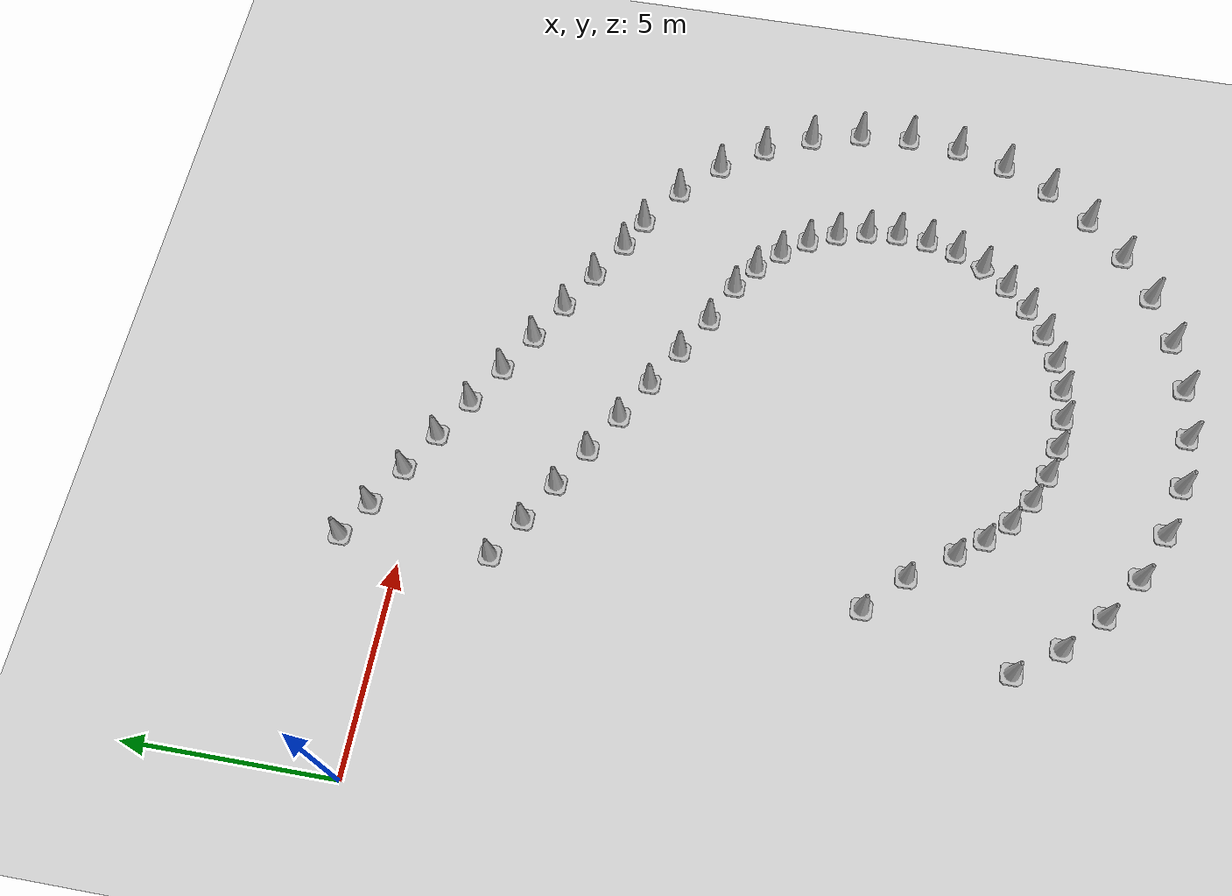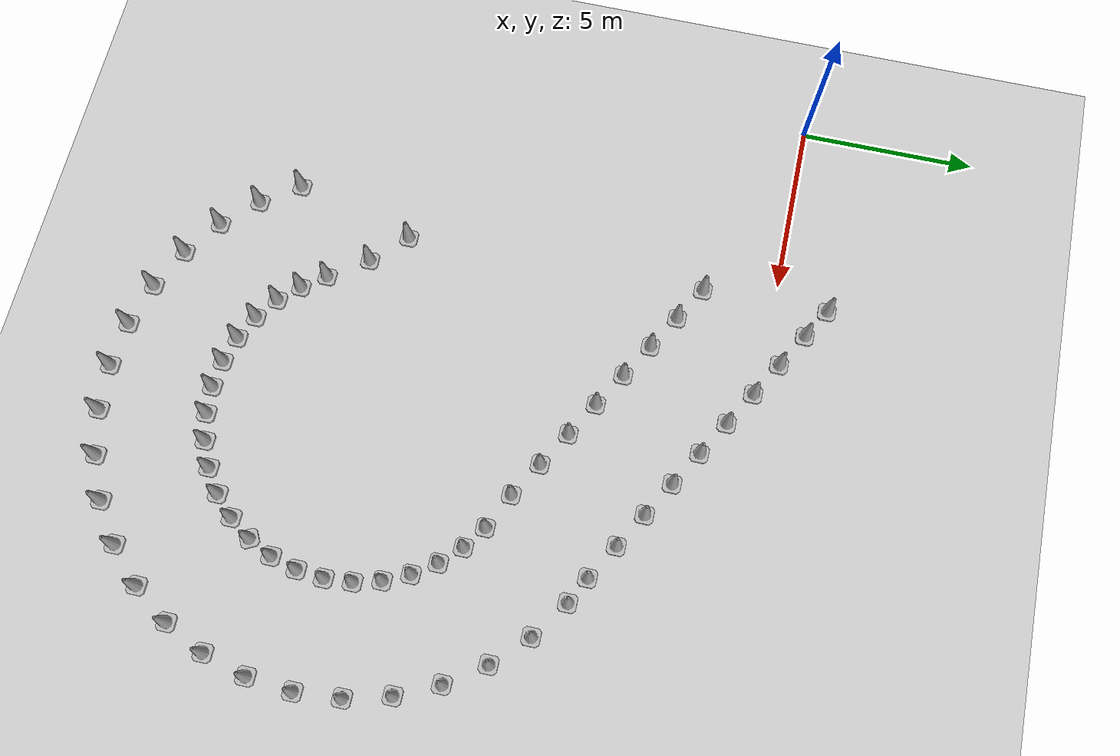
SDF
<sdf version="1.7">
 <world name="default">
  <model name="ground_plane">
   <static>1</static>
   <link name="link">
    <collision name="collision">
     <geometry><plane><normal>0 0 1</normal><size>100 100</size></plane></geometry>
     <surface><friction><ode><mu>100</mu><mu2>50</mu2></ode></friction></surface>
    </collision>
    <visual name="visual">
     <cast_shadows>0</cast_shadows>
     <geometry><plane><normal>0 0 1</normal><size>100 100</size></plane></geometry>
     <material>
      <script><uri>file://media/materials/scripts/gazebo.material</uri><name>Gazebo/Grey</name></script>
     </material>
    </visual>
   </link>
  </model>
  <model name="Construction Cone">
   <link name="link">
    <collision name="collision">
     <geometry>
      <mesh><scale>10 10 10</scale><uri>model://construction_cone/meshes/construction_cone.dae</uri></mesh>
     </geometry>
    </collision>
    <visual name="visual">
     <geometry>
      <mesh><scale>10 10 10</scale><uri>model://construction_cone/meshes/construction_cone.dae</uri></mesh>
     </geometry>
    </visual>
    <inertial>
     <inertia><ixx>1</ixx><ixy>0</ixy><ixz>0</ixz><iyy>1</iyy><iyz>0</iyz><izz>1</izz></inertia>
     <mass>1</mass>
    </inertial>
   </link>
   <pose>15.61 -12.04 -0 -0 -0 -0</pose>
  </model>
  <model name="Construction Cone_clone">
   <link name="link">
    <collision name="collision">
     <geometry>
      <mesh><scale>10 10 10</scale><uri>model://construction_cone/meshes/construction_cone.dae</uri></mesh>
     </geometry>
    </collision>
    <visual name="visual">
     <geometry>
      <mesh><scale>10 10 10</scale><uri>model://construction_cone/meshes/construction_cone.dae</uri></mesh>
     </geometry>
    </visual>
    <inertial>
     <inertia><ixx>1</ixx><ixy>0</ixy><ixz>0</ixz><iyy>1</iyy><iyz>0</iyz><izz>1</izz></inertia>
     <mass>1</mass>
    </inertial>
   </link>
   <pose>8.6 -3.81 -0 -0 -0 -0</pose>
  </model>
  <model name="Construction Cone_clone_0">
   <link name="link">
    <collision name="collision">
     <geometry>
      <mesh><scale>10 10 10</scale><uri>model://construction_cone/meshes/construction_cone.dae</uri></mesh>
     </geometry>
    </collision>
    <visual name="visual">
     <geometry>
      <mesh><scale>10 10 10</scale><uri>model://construction_cone/meshes/construction_cone.dae</uri></mesh>
     </geometry>
    </visual>
    <inertial>
     <inertia><ixx>1</ixx><ixy>0</ixy><ixz>0</ixz><iyy>1</iyy><iyz>0</iyz><izz>1</izz></inertia>
     <mass>1</mass>
    </inertial>
   </link>
   <pose>15.88 -10.5 -0 -0 -0 -0</pose>
  </model>
  <model name="Construction Cone_clone_1">
   <link name="link">
    <collision name="collision">
     <geometry>
      <mesh><scale>10 10 10</scale><uri>model://construction_cone/meshes/construction_cone.dae</uri></mesh>
     </geometry>
    </collision>
    <visual name="visual">
     <geometry>
      <mesh><scale>10 10 10</scale><uri>model://construction_cone/meshes/construction_cone.dae</uri></mesh>
     </geometry>
    </visual>
    <inertial>
     <inertia><ixx>1</ixx><ixy>0</ixy><ixz>0</ixz><iyy>1</iyy><iyz>0</iyz><izz>1</izz></inertia>
     <mass>1</mass>
    </inertial>
   </link>
   <pose>7.6 -3.23 -0 -0 -0 -0</pose>
  </model>
  <model name="Construction Cone_clone_2">
   <link name="link">
    <collision name="collision">
     <geometry>
      <mesh><scale>10 10 10</scale><uri>model://construction_cone/meshes/construction_cone.dae</uri></mesh>
     </geometry>
    </collision>
    <visual name="visual">
     <geometry>
      <mesh><scale>10 10 10</scale><uri>model://construction_cone/meshes/construction_cone.dae</uri></mesh>
     </geometry>
    </visual>
    <inertial>
     <inertia><ixx>1</ixx><ixy>0</ixy><ixz>0</ixz><iyy>1</iyy><iyz>0</iyz><izz>1</izz></inertia>
     <mass>1</mass>
    </inertial>
   </link>
   <pose>15.81 -11.28 -0 -0 -0 -0</pose>
  </model>
  <model name="Construction Cone_clone_3">
   <link name="link">
    <collision name="collision">
     <geometry>
      <mesh><scale>10 10 10</scale><uri>model://construction_cone/meshes/construction_cone.dae</uri></mesh>
     </geometry>
    </collision>
    <visual name="visual">
     <geometry>
      <mesh><scale>10 10 10</scale><uri>model://construction_cone/meshes/construction_cone.dae</uri></mesh>
     </geometry>
    </visual>
    <inertial>
     <inertia><ixx>1</ixx><ixy>0</ixy><ixz>0</ixz><iyy>1</iyy><iyz>0</iyz><izz>1</izz></inertia>
     <mass>1</mass>
    </inertial>
   </link>
   <pose>6.6 -2.65 -0 -0 -0 -0</pose>
  </model>
  <model name="Construction Cone_clone_4">
   <link name="link">
    <collision name="collision">
     <geometry>
      <mesh><scale>10 10 10</scale><uri>model://construction_cone/meshes/construction_cone.dae</uri></mesh>
     </geometry>
    </collision>
    <visual name="visual">
     <geometry>
      <mesh><scale>10 10 10</scale><uri>model://construction_cone/meshes/construction_cone.dae</uri></mesh>
     </geometry>
    </visual>
    <inertial>
     <inertia><ixx>1</ixx><ixy>0</ixy><ixz>0</ixz><iyy>1</iyy><iyz>0</iyz><izz>1</izz></inertia>
     <mass>1</mass>
    </inertial>
   </link>
   <pose>15.81 -9.72 -0 -0 -0 -0</pose>
  </model>
  <model name="Construction Cone_clone_5">
   <link name="link">
    <collision name="collision">
     <geometry>
      <mesh><scale>10 10 10</scale><uri>model://construction_cone/meshes/construction_cone.dae</uri></mesh>
     </geometry>
    </collision>
    <visual name="visual">
     <geometry>
      <mesh><scale>10 10 10</scale><uri>model://construction_cone/meshes/construction_cone.dae</uri></mesh>
     </geometry>
    </visual>
    <inertial>
     <inertia><ixx>1</ixx><ixy>0</ixy><ixz>0</ixz><iyy>1</iyy><iyz>0</iyz><izz>1</izz></inertia>
     <mass>1</mass>
    </inertial>
   </link>
   <pose>5.6 -2.08 -0 0 -1e-06 0</pose>
  </model>
  <model name="Construction Cone_clone_6">
   <link name="link">
    <collision name="collision">
     <geometry>
      <mesh><scale>10 10 10</scale><uri>model://construction_cone/meshes/construction_cone.dae</uri></mesh>
     </geometry>
    </collision>
    <visual name="visual">
     <geometry>
      <mesh><scale>10 10 10</scale><uri>model://construction_cone/meshes/construction_cone.dae</uri></mesh>
     </geometry>
    </visual>
    <inertial>
     <inertia><ixx>1</ixx><ixy>0</ixy><ixz>0</ixz><iyy>1</iyy><iyz>0</iyz><izz>1</izz></inertia>
     <mass>1</mass>
    </inertial>
   </link>
   <pose>15.28 -8.25 -0 0 -1e-06 0</pose>
  </model>
  <model name="Construction Cone_clone_8">
   <link name="link">
    <collision name="collision">
     <geometry>
      <mesh><scale>10 10 10</scale><uri>model://construction_cone/meshes/construction_cone.dae</uri></mesh>
     </geometry>
    </collision>
    <visual name="visual">
     <geometry>
      <mesh><scale>10 10 10</scale><uri>model://construction_cone/meshes/construction_cone.dae</uri></mesh>
     </geometry>
    </visual>
    <inertial>
     <inertia><ixx>1</ixx><ixy>0</ixy><ixz>0</ixz><iyy>1</iyy><iyz>0</iyz><izz>1</izz></inertia>
     <mass>1</mass>
    </inertial>
   </link>
   <pose>14.83 -7.61 -0 -0 -0 -0</pose>
  </model>
  <model name="Construction Cone_clone_9">
   <link name="link">
    <collision name="collision">
     <geometry>
      <mesh><scale>10 10 10</scale><uri>model://construction_cone/meshes/construction_cone.dae</uri></mesh>
     </geometry>
    </collision>
    <visual name="visual">
     <geometry>
      <mesh><scale>10 10 10</scale><uri>model://construction_cone/meshes/construction_cone.dae</uri></mesh>
     </geometry>
    </visual>
    <inertial>
     <inertia><ixx>1</ixx><ixy>0</ixy><ixz>0</ixz><iyy>1</iyy><iyz>0</iyz><izz>1</izz></inertia>
     <mass>1</mass>
    </inertial>
   </link>
   <pose>13.63 -6.6 -0 -0 -0 -0</pose>
  </model>
  <model name="Construction Cone_clone_10">
   <link name="link">
    <collision name="collision">
     <geometry>
      <mesh><scale>10 10 10</scale><uri>model://construction_cone/meshes/construction_cone.dae</uri></mesh>
     </geometry>
    </collision>
    <visual name="visual">
     <geometry>
      <mesh><scale>10 10 10</scale><uri>model://construction_cone/meshes/construction_cone.dae</uri></mesh>
     </geometry>
    </visual>
    <inertial>
     <inertia><ixx>1</ixx><ixy>0</ixy><ixz>0</ixz><iyy>1</iyy><iyz>0</iyz><izz>1</izz></inertia>
     <mass>1</mass>
    </inertial>
   </link>
   <pose>14.28 -7.05 -0 -0 -0 -0</pose>
  </model>
  <model name="Construction Cone_clone_11">
   <link name="link">
    <collision name="collision">
     <geometry>
      <mesh><scale>10 10 10</scale><uri>model://construction_cone/meshes/construction_cone.dae</uri></mesh>
     </geometry>
    </collision>
    <visual name="visual">
     <geometry>
      <mesh><scale>10 10 10</scale><uri>model://construction_cone/meshes/construction_cone.dae</uri></mesh>
     </geometry>
    </visual>
    <inertial>
     <inertia><ixx>1</ixx><ixy>0</ixy><ixz>0</ixz><iyy>1</iyy><iyz>0</iyz><izz>1</izz></inertia>
     <mass>1</mass>
    </inertial>
   </link>
   <pose>15.61 -8.96 -0 -0 -0 -0</pose>
  </model>
  <model name="Construction Cone_clone_12">
   <link name="link">
    <collision name="collision">
     <geometry>
      <mesh><scale>10 10 10</scale><uri>model://construction_cone/meshes/construction_cone.dae</uri></mesh>
     </geometry>
    </collision>
    <visual name="visual">
     <geometry>
      <mesh><scale>10 10 10</scale><uri>model://construction_cone/meshes/construction_cone.dae</uri></mesh>
     </geometry>
    </visual>
    <inertial>
     <inertia><ixx>1</ixx><ixy>0</ixy><ixz>0</ixz><iyy>1</iyy><iyz>0</iyz><izz>1</izz></inertia>
     <mass>1</mass>
    </inertial>
   </link>
   <pose>15.2793 -12.7506 -0 0 -0 0.480187</pose>
  </model>
  <model name="Construction Cone_clone_13">
   <link name="link">
    <collision name="collision">
     <geometry>
      <mesh><scale>10 10 10</scale><uri>model://construction_cone/meshes/construction_cone.dae</uri></mesh>
     </geometry>
    </collision>
    <visual name="visual">
     <geometry>
      <mesh><scale>10 10 10</scale><uri>model://construction_cone/meshes/construction_cone.dae</uri></mesh>
     </geometry>
    </visual>
    <inertial>
     <inertia><ixx>1</ixx><ixy>0</ixy><ixz>0</ixz><iyy>1</iyy><iyz>0</iyz><izz>1</izz></inertia>
     <mass>1</mass>
    </inertial>
   </link>
   <pose>9.6 -4.39 -0 -0 -0 -0</pose>
  </model>
  <model name="Construction Cone_clone_14">
   <link name="link">
    <collision name="collision">
     <geometry>
      <mesh><scale>10 10 10</scale><uri>model://construction_cone/meshes/construction_cone.dae</uri></mesh>
     </geometry>
    </collision>
    <visual name="visual">
     <geometry>
      <mesh><scale>10 10 10</scale><uri>model://construction_cone/meshes/construction_cone.dae</uri></mesh>
     </geometry>
    </visual>
    <inertial>
     <inertia><ixx>1</ixx><ixy>0</ixy><ixz>0</ixz><iyy>1</iyy><iyz>0</iyz><izz>1</izz></inertia>
     <mass>1</mass>
    </inertial>
   </link>
   <pose>14.83 -13.39 -0 -0 -0 -0</pose>
  </model>
  <model name="Construction Cone_clone_15">
   <link name="link">
    <collision name="collision">
     <geometry>
      <mesh><scale>10 10 10</scale><uri>model://construction_cone/meshes/construction_cone.dae</uri></mesh>
     </geometry>
    </collision>
    <visual name="visual">
     <geometry>
      <mesh><scale>10 10 10</scale><uri>model://construction_cone/meshes/construction_cone.dae</uri></mesh>
     </geometry>
    </visual>
    <inertial>
     <inertia><ixx>1</ixx><ixy>0</ixy><ixz>0</ixz><iyy>1</iyy><iyz>0</iyz><izz>1</izz></inertia>
     <mass>1</mass>
    </inertial>
   </link>
   <pose>10.6 -4.96 -0 -0 -0 -0</pose>
  </model>
  <model name="Construction Cone_clone_16">
   <link name="link">
    <collision name="collision">
     <geometry>
      <mesh><scale>10 10 10</scale><uri>model://construction_cone/meshes/construction_cone.dae</uri></mesh>
     </geometry>
    </collision>
    <visual name="visual">
     <geometry>
      <mesh><scale>10 10 10</scale><uri>model://construction_cone/meshes/construction_cone.dae</uri></mesh>
     </geometry>
    </visual>
    <inertial>
     <inertia><ixx>1</ixx><ixy>0</ixy><ixz>0</ixz><iyy>1</iyy><iyz>0</iyz><izz>1</izz></inertia>
     <mass>1</mass>
    </inertial>
   </link>
   <pose>14.28 -13.95 -0 0 -1e-06 0</pose>
  </model>
  <model name="Construction Cone_clone_17">
   <link name="link">
    <collision name="collision">
     <geometry>
      <mesh><scale>10 10 10</scale><uri>model://construction_cone/meshes/construction_cone.dae</uri></mesh>
     </geometry>
    </collision>
    <visual name="visual">
     <geometry>
      <mesh><scale>10 10 10</scale><uri>model://construction_cone/meshes/construction_cone.dae</uri></mesh>
     </geometry>
    </visual>
    <inertial>
     <inertia><ixx>1</ixx><ixy>0</ixy><ixz>0</ixz><iyy>1</iyy><iyz>0</iyz><izz>1</izz></inertia>
     <mass>1</mass>
    </inertial>
   </link>
   <pose>11.6 -5.54 -0 -0 -0 -0</pose>
  </model>
  <model name="Construction Cone_clone_18">
   <link name="link">
    <collision name="collision">
     <geometry>
      <mesh><scale>10 10 10</scale><uri>model://construction_cone/meshes/construction_cone.dae</uri></mesh>
     </geometry>
    </collision>
    <visual name="visual">
     <geometry>
      <mesh><scale>10 10 10</scale><uri>model://construction_cone/meshes/construction_cone.dae</uri></mesh>
     </geometry>
    </visual>
    <inertial>
     <inertia><ixx>1</ixx><ixy>0</ixy><ixz>0</ixz><iyy>1</iyy><iyz>0</iyz><izz>1</izz></inertia>
     <mass>1</mass>
    </inertial>
   </link>
   <pose>13.63 -14.4 -1e-05 0 -0 0</pose>
  </model>
  <model name="Construction Cone_clone_19">
   <link name="link">
    <collision name="collision">
     <geometry>
      <mesh><scale>10 10 10</scale><uri>model://construction_cone/meshes/construction_cone.dae</uri></mesh>
     </geometry>
    </collision>
    <visual name="visual">
     <geometry>
      <mesh><scale>10 10 10</scale><uri>model://construction_cone/meshes/construction_cone.dae</uri></mesh>
     </geometry>
    </visual>
    <inertial>
     <inertia><ixx>1</ixx><ixy>0</ixy><ixz>0</ixz><iyy>1</iyy><iyz>0</iyz><izz>1</izz></inertia>
     <mass>1</mass>
    </inertial>
   </link>
   <pose>12.6 -6.12 -0 0 -1e-06 0</pose>
  </model>
  <model name="Construction Cone_clone_20">
   <link name="link">
    <collision name="collision">
     <geometry>
      <mesh><scale>10 10 10</scale><uri>model://construction_cone/meshes/construction_cone.dae</uri></mesh>
     </geometry>
    </collision>
    <visual name="visual">
     <geometry>
      <mesh><scale>10 10 10</scale><uri>model://construction_cone/meshes/construction_cone.dae</uri></mesh>
     </geometry>
    </visual>
    <inertial>
     <inertia><ixx>1</ixx><ixy>0</ixy><ixz>0</ixz><iyy>1</iyy><iyz>0</iyz><izz>1</izz></inertia>
     <mass>1</mass>
    </inertial>
   </link>
   <pose>12.92 -14.73 -0 -0 -0 -0</pose>
  </model>
  <model name="Construction Cone_clone_21">
   <link name="link">
    <collision name="collision">
     <geometry>
      <mesh><scale>10 10 10</scale><uri>model://construction_cone/meshes/construction_cone.dae</uri></mesh>
     </geometry>
    </collision>
    <visual name="visual">
     <geometry>
      <mesh><scale>10 10 10</scale><uri>model://construction_cone/meshes/construction_cone.dae</uri></mesh>
     </geometry>
    </visual>
    <inertial>
     <inertia><ixx>1</ixx><ixy>0</ixy><ixz>0</ixz><iyy>1</iyy><iyz>0</iyz><izz>1</izz></inertia>
     <mass>1</mass>
    </inertial>
   </link>
   <pose>6.74 -11.68 -0 0 -0 0.044512</pose>
  </model>
  <model name="Construction Cone_clone_22">
   <link name="link">
    <collision name="collision">
     <geometry>
      <mesh><scale>10 10 10</scale><uri>model://construction_cone/meshes/construction_cone.dae</uri></mesh>
     </geometry>
    </collision>
    <visual name="visual">
     <geometry>
      <mesh><scale>10 10 10</scale><uri>model://construction_cone/meshes/construction_cone.dae</uri></mesh>
     </geometry>
    </visual>
    <inertial>
     <inertia><ixx>1</ixx><ixy>0</ixy><ixz>0</ixz><iyy>1</iyy><iyz>0</iyz><izz>1</izz></inertia>
     <mass>1</mass>
    </inertial>
   </link>
   <pose>12.16 -14.93 -0 -0 -0 -0</pose>
  </model>
  <model name="Construction Cone_clone_23">
   <link name="link">
    <collision name="collision">
     <geometry>
      <mesh><scale>10 10 10</scale><uri>model://construction_cone/meshes/construction_cone.dae</uri></mesh>
     </geometry>
    </collision>
    <visual name="visual">
     <geometry>
      <mesh><scale>10 10 10</scale><uri>model://construction_cone/meshes/construction_cone.dae</uri></mesh>
     </geometry>
    </visual>
    <inertial>
     <inertia><ixx>1</ixx><ixy>0</ixy><ixz>0</ixz><iyy>1</iyy><iyz>0</iyz><izz>1</izz></inertia>
     <mass>1</mass>
    </inertial>
   </link>
   <pose>5.81 -10.75 -0 0 -1e-06 0</pose>
  </model>
  <model name="Construction Cone_clone_24">
   <link name="link">
    <collision name="collision">
     <geometry>
      <mesh><scale>10 10 10</scale><uri>model://construction_cone/meshes/construction_cone.dae</uri></mesh>
     </geometry>
    </collision>
    <visual name="visual">
     <geometry>
      <mesh><scale>10 10 10</scale><uri>model://construction_cone/meshes/construction_cone.dae</uri></mesh>
     </geometry>
    </visual>
    <inertial>
     <inertia><ixx>1</ixx><ixy>0</ixy><ixz>0</ixz><iyy>1</iyy><iyz>0</iyz><izz>1</izz></inertia>
     <mass>1</mass>
    </inertial>
   </link>
   <pose>11.38 -15 -1e-05 0 -0 0</pose>
  </model>
  <model name="Construction Cone_clone_26">
   <link name="link">
    <collision name="collision">
     <geometry>
      <mesh><scale>10 10 10</scale><uri>model://construction_cone/meshes/construction_cone.dae</uri></mesh>
     </geometry>
    </collision>
    <visual name="visual">
     <geometry>
      <mesh><scale>10 10 10</scale><uri>model://construction_cone/meshes/construction_cone.dae</uri></mesh>
     </geometry>
    </visual>
    <inertial>
     <inertia><ixx>1</ixx><ixy>0</ixy><ixz>0</ixz><iyy>1</iyy><iyz>0</iyz><izz>1</izz></inertia>
     <mass>1</mass>
    </inertial>
   </link>
   <pose>10.6 -14.93 -0 -0 -0 -0</pose>
  </model>
  <model name="Construction Cone_clone_28">
   <link name="link">
    <collision name="collision">
     <geometry>
      <mesh><scale>10 10 10</scale><uri>model://construction_cone/meshes/construction_cone.dae</uri></mesh>
     </geometry>
    </collision>
    <visual name="visual">
     <geometry>
      <mesh><scale>10 10 10</scale><uri>model://construction_cone/meshes/construction_cone.dae</uri></mesh>
     </geometry>
    </visual>
    <inertial>
     <inertia><ixx>1</ixx><ixy>0</ixy><ixz>0</ixz><iyy>1</iyy><iyz>0</iyz><izz>1</izz></inertia>
     <mass>1</mass>
    </inertial>
   </link>
   <pose>9.84 -14.73 -0 0 -1e-06 0</pose>
  </model>
  <model name="Construction Cone_clone_30">
   <link name="link">
    <collision name="collision">
     <geometry>
      <mesh><scale>10 10 10</scale><uri>model://construction_cone/meshes/construction_cone.dae</uri></mesh>
     </geometry>
    </collision>
    <visual name="visual">
     <geometry>
      <mesh><scale>10 10 10</scale><uri>model://construction_cone/meshes/construction_cone.dae</uri></mesh>
     </geometry>
    </visual>
    <inertial>
     <inertia><ixx>1</ixx><ixy>0</ixy><ixz>0</ixz><iyy>1</iyy><iyz>0</iyz><izz>1</izz></inertia>
     <mass>1</mass>
    </inertial>
   </link>
   <pose>8.49 -13.95 -0 -0 -0 -0</pose>
  </model>
  <model name="Construction Cone_clone_31">
   <link name="link">
    <collision name="collision">
     <geometry>
      <mesh><scale>10 10 10</scale><uri>model://construction_cone/meshes/construction_cone.dae</uri></mesh>
     </geometry>
    </collision>
    <visual name="visual">
     <geometry>
      <mesh><scale>10 10 10</scale><uri>model://construction_cone/meshes/construction_cone.dae</uri></mesh>
     </geometry>
    </visual>
    <inertial>
     <inertia><ixx>1</ixx><ixy>0</ixy><ixz>0</ixz><iyy>1</iyy><iyz>0</iyz><izz>1</izz></inertia>
     <mass>1</mass>
    </inertial>
   </link>
   <pose>9.13 -14.4 -0 -0 -0 -0</pose>
  </model>
  <model name="Construction Cone_clone_34">
   <link name="link">
    <collision name="collision">
     <geometry>
      <mesh><scale>10 10 10</scale><uri>model://construction_cone/meshes/construction_cone.dae</uri></mesh>
     </geometry>
    </collision>
    <visual name="visual">
     <geometry>
      <mesh><scale>10 10 10</scale><uri>model://construction_cone/meshes/construction_cone.dae</uri></mesh>
     </geometry>
    </visual>
    <inertial>
     <inertia><ixx>1</ixx><ixy>0</ixy><ixz>0</ixz><iyy>1</iyy><iyz>0</iyz><izz>1</izz></inertia>
     <mass>1</mass>
    </inertial>
   </link>
   <pose>7.96913 -13.3975 -0 0 -1e-06 -0.004085</pose>
  </model>
  <model name="Construction Cone_clone_36">
   <link name="link">
    <collision name="collision">
     <geometry>
      <mesh><scale>10 10 10</scale><uri>model://construction_cone/meshes/construction_cone.dae</uri></mesh>
     </geometry>
    </collision>
    <visual name="visual">
     <geometry>
      <mesh><scale>10 10 10</scale><uri>model://construction_cone/meshes/construction_cone.dae</uri></mesh>
     </geometry>
    </visual>
    <inertial>
     <inertia><ixx>1</ixx><ixy>0</ixy><ixz>0</ixz><iyy>1</iyy><iyz>0</iyz><izz>1</izz></inertia>
     <mass>1</mass>
    </inertial>
   </link>
   <pose>7.49 -12.75 -0 0 -1e-06 0</pose>
  </model>
  <model name="Construction Cone_clone_94">
   <link name="link">
    <collision name="collision">
     <geometry>
      <mesh><scale>10 10 10</scale><uri>model://construction_cone/meshes/construction_cone.dae</uri></mesh>
     </geometry>
    </collision>
    <visual name="visual">
     <geometry>
      <mesh><scale>10 10 10</scale><uri>model://construction_cone/meshes/construction_cone.dae</uri></mesh>
     </geometry>
    </visual>
    <inertial>
     <inertia><ixx>1</ixx><ixy>0</ixy><ixz>0</ixz><iyy>1</iyy><iyz>0</iyz><izz>1</izz></inertia>
     <mass>1</mass>
    </inertial>
   </link>
   <pose>15.13 -17 -0 -0 -0 -0</pose>
  </model>
  <model name="Construction Cone_clone_95">
   <link name="link">
    <collision name="collision">
     <geometry>
      <mesh><scale>10 10 10</scale><uri>model://construction_cone/meshes/construction_cone.dae</uri></mesh>
     </geometry>
    </collision>
    <visual name="visual">
     <geometry>
      <mesh><scale>10 10 10</scale><uri>model://construction_cone/meshes/construction_cone.dae</uri></mesh>
     </geometry>
    </visual>
    <inertial>
     <inertia><ixx>1</ixx><ixy>0</ixy><ixz>0</ixz><iyy>1</iyy><iyz>0</iyz><izz>1</izz></inertia>
     <mass>1</mass>
    </inertial>
   </link>
   <pose>13.95 -17.55 -9e-06 1e-06 -0 0</pose>
  </model>
  <model name="Construction Cone_clone_96">
   <link name="link">
    <collision name="collision">
     <geometry>
      <mesh><scale>10 10 10</scale><uri>model://construction_cone/meshes/construction_cone.dae</uri></mesh>
     </geometry>
    </collision>
    <visual name="visual">
     <geometry>
      <mesh><scale>10 10 10</scale><uri>model://construction_cone/meshes/construction_cone.dae</uri></mesh>
     </geometry>
    </visual>
    <inertial>
     <inertia><ixx>1</ixx><ixy>0</ixy><ixz>0</ixz><iyy>1</iyy><iyz>0</iyz><izz>1</izz></inertia>
     <mass>1</mass>
    </inertial>
   </link>
   <pose>12.69 -17.89 -0 0 -0 9.9e-05</pose>
  </model>
  <model name="Construction Cone_clone_97">
   <link name="link">
    <collision name="collision">
     <geometry>
      <mesh><scale>10 10 10</scale><uri>model://construction_cone/meshes/construction_cone.dae</uri></mesh>
     </geometry>
    </collision>
    <visual name="visual">
     <geometry>
      <mesh><scale>10 10 10</scale><uri>model://construction_cone/meshes/construction_cone.dae</uri></mesh>
     </geometry>
    </visual>
    <inertial>
     <inertia><ixx>1</ixx><ixy>0</ixy><ixz>0</ixz><iyy>1</iyy><iyz>0</iyz><izz>1</izz></inertia>
     <mass>1</mass>
    </inertial>
   </link>
   <pose>11.38 -18 -0 0 -0 1.3e-05</pose>
  </model>
  <model name="Construction Cone_clone_98">
   <link name="link">
    <collision name="collision">
     <geometry>
      <mesh><scale>10 10 10</scale><uri>model://construction_cone/meshes/construction_cone.dae</uri></mesh>
     </geometry>
    </collision>
    <visual name="visual">
     <geometry>
      <mesh><scale>10 10 10</scale><uri>model://construction_cone/meshes/construction_cone.dae</uri></mesh>
     </geometry>
    </visual>
    <inertial>
     <inertia><ixx>1</ixx><ixy>0</ixy><ixz>0</ixz><iyy>1</iyy><iyz>0</iyz><izz>1</izz></inertia>
     <mass>1</mass>
    </inertial>
   </link>
   <pose>10.08 -17.89 -0 -0 -0 -0</pose>
  </model>
  <model name="Construction Cone_clone_99">
   <link name="link">
    <collision name="collision">
     <geometry>
      <mesh><scale>10 10 10</scale><uri>model://construction_cone/meshes/construction_cone.dae</uri></mesh>
     </geometry>
    </collision>
    <visual name="visual">
     <geometry>
      <mesh><scale>10 10 10</scale><uri>model://construction_cone/meshes/construction_cone.dae</uri></mesh>
     </geometry>
    </visual>
    <inertial>
     <inertia><ixx>1</ixx><ixy>0</ixy><ixz>0</ixz><iyy>1</iyy><iyz>0</iyz><izz>1</izz></inertia>
     <mass>1</mass>
    </inertial>
   </link>
   <pose>8.82 -17.55 -0 -0 -0 -0</pose>
  </model>
  <model name="Construction Cone_clone_100">
   <link name="link">
    <collision name="collision">
     <geometry>
      <mesh><scale>10 10 10</scale><uri>model://construction_cone/meshes/construction_cone.dae</uri></mesh>
     </geometry>
    </collision>
    <visual name="visual">
     <geometry>
      <mesh><scale>10 10 10</scale><uri>model://construction_cone/meshes/construction_cone.dae</uri></mesh>
     </geometry>
    </visual>
    <inertial>
     <inertia><ixx>1</ixx><ixy>0</ixy><ixz>0</ixz><iyy>1</iyy><iyz>0</iyz><izz>1</izz></inertia>
     <mass>1</mass>
    </inertial>
   </link>
   <pose>7.63 -17 -9e-06 1e-06 -0 0</pose>
  </model>
  <model name="Construction Cone_clone_101">
   <link name="link">
    <collision name="collision">
     <geometry>
      <mesh><scale>10 10 10</scale><uri>model://construction_cone/meshes/construction_cone.dae</uri></mesh>
     </geometry>
    </collision>
    <visual name="visual">
     <geometry>
      <mesh><scale>10 10 10</scale><uri>model://construction_cone/meshes/construction_cone.dae</uri></mesh>
     </geometry>
    </visual>
    <inertial>
     <inertia><ixx>1</ixx><ixy>0</ixy><ixz>0</ixz><iyy>1</iyy><iyz>0</iyz><izz>1</izz></inertia>
     <mass>1</mass>
    </inertial>
   </link>
   <pose>6.56 -16.25 -0 -0 -0 -0</pose>
  </model>
  <model name="Construction Cone_clone_102">
   <link name="link">
    <collision name="collision">
     <geometry>
      <mesh><scale>10 10 10</scale><uri>model://construction_cone/meshes/construction_cone.dae</uri></mesh>
     </geometry>
    </collision>
    <visual name="visual">
     <geometry>
      <mesh><scale>10 10 10</scale><uri>model://construction_cone/meshes/construction_cone.dae</uri></mesh>
     </geometry>
    </visual>
    <inertial>
     <inertia><ixx>1</ixx><ixy>0</ixy><ixz>0</ixz><iyy>1</iyy><iyz>0</iyz><izz>1</izz></inertia>
     <mass>1</mass>
    </inertial>
   </link>
   <pose>5.64 -15.32 -0 1e-06 -0 -0.022913</pose>
  </model>
  <model name="Construction Cone_clone_103">
   <link name="link">
    <collision name="collision">
     <geometry>
      <mesh><scale>10 10 10</scale><uri>model://construction_cone/meshes/construction_cone.dae</uri></mesh>
     </geometry>
    </collision>
    <visual name="visual">
     <geometry>
      <mesh><scale>10 10 10</scale><uri>model://construction_cone/meshes/construction_cone.dae</uri></mesh>
     </geometry>
    </visual>
    <inertial>
     <inertia><ixx>1</ixx><ixy>0</ixy><ixz>0</ixz><iyy>1</iyy><iyz>0</iyz><izz>1</izz></inertia>
     <mass>1</mass>
    </inertial>
   </link>
   <pose>16.2 -16.25 -0 -0 -0 -0</pose>
  </model>
  <model name="Construction Cone_clone_104">
   <link name="link">
    <collision name="collision">
     <geometry>
      <mesh><scale>10 10 10</scale><uri>model://construction_cone/meshes/construction_cone.dae</uri></mesh>
     </geometry>
    </collision>
    <visual name="visual">
     <geometry>
      <mesh><scale>10 10 10</scale><uri>model://construction_cone/meshes/construction_cone.dae</uri></mesh>
     </geometry>
    </visual>
    <inertial>
     <inertia><ixx>1</ixx><ixy>0</ixy><ixz>0</ixz><iyy>1</iyy><iyz>0</iyz><izz>1</izz></inertia>
     <mass>1</mass>
    </inertial>
   </link>
   <pose>17.13 -15.32 -0 -0 -0 -0</pose>
  </model>
  <model name="Construction Cone_clone_105">
   <link name="link">
    <collision name="collision">
     <geometry>
      <mesh><scale>10 10 10</scale><uri>model://construction_cone/meshes/construction_cone.dae</uri></mesh>
     </geometry>
    </collision>
    <visual name="visual">
     <geometry>
      <mesh><scale>10 10 10</scale><uri>model://construction_cone/meshes/construction_cone.dae</uri></mesh>
     </geometry>
    </visual>
    <inertial>
     <inertia><ixx>1</ixx><ixy>0</ixy><ixz>0</ixz><iyy>1</iyy><iyz>0</iyz><izz>1</izz></inertia>
     <mass>1</mass>
    </inertial>
   </link>
   <pose>17.88 -14.25 -0 -0 -0 -0</pose>
  </model>
  <model name="Construction Cone_clone_106">
   <link name="link">
    <collision name="collision">
     <geometry>
      <mesh><scale>10 10 10</scale><uri>model://construction_cone/meshes/construction_cone.dae</uri></mesh>
     </geometry>
    </collision>
    <visual name="visual">
     <geometry>
      <mesh><scale>10 10 10</scale><uri>model://construction_cone/meshes/construction_cone.dae</uri></mesh>
     </geometry>
    </visual>
    <inertial>
     <inertia><ixx>1</ixx><ixy>0</ixy><ixz>0</ixz><iyy>1</iyy><iyz>0</iyz><izz>1</izz></inertia>
     <mass>1</mass>
    </inertial>
   </link>
   <pose>18.43 -13.07 -0 -0 -0 -0</pose>
  </model>
  <model name="Construction Cone_clone_107">
   <link name="link">
    <collision name="collision">
     <geometry>
      <mesh><scale>10 10 10</scale><uri>model://construction_cone/meshes/construction_cone.dae</uri></mesh>
     </geometry>
    </collision>
    <visual name="visual">
     <geometry>
      <mesh><scale>10 10 10</scale><uri>model://construction_cone/meshes/construction_cone.dae</uri></mesh>
     </geometry>
    </visual>
    <inertial>
     <inertia><ixx>1</ixx><ixy>0</ixy><ixz>0</ixz><iyy>1</iyy><iyz>0</iyz><izz>1</izz></inertia>
     <mass>1</mass>
    </inertial>
   </link>
   <pose>18.88 -10.5 -0 -0 -0 -0</pose>
  </model>
  <model name="Construction Cone_clone_108">
   <link name="link">
    <collision name="collision">
     <geometry>
      <mesh><scale>10 10 10</scale><uri>model://construction_cone/meshes/construction_cone.dae</uri></mesh>
     </geometry>
    </collision>
    <visual name="visual">
     <geometry>
      <mesh><scale>10 10 10</scale><uri>model://construction_cone/meshes/construction_cone.dae</uri></mesh>
     </geometry>
    </visual>
    <inertial>
     <inertia><ixx>1</ixx><ixy>0</ixy><ixz>0</ixz><iyy>1</iyy><iyz>0</iyz><izz>1</izz></inertia>
     <mass>1</mass>
    </inertial>
   </link>
   <pose>18.77 -11.8 -0 -0 -0 -0</pose>
  </model>
  <model name="Construction Cone_clone_109">
   <link name="link">
    <collision name="collision">
     <geometry>
      <mesh><scale>10 10 10</scale><uri>model://construction_cone/meshes/construction_cone.dae</uri></mesh>
     </geometry>
    </collision>
    <visual name="visual">
     <geometry>
      <mesh><scale>10 10 10</scale><uri>model://construction_cone/meshes/construction_cone.dae</uri></mesh>
     </geometry>
    </visual>
    <inertial>
     <inertia><ixx>1</ixx><ixy>0</ixy><ixz>0</ixz><iyy>1</iyy><iyz>0</iyz><izz>1</izz></inertia>
     <mass>1</mass>
    </inertial>
   </link>
   <pose>15.13 -4 -0 0 -0 0.004778</pose>
  </model>
  <model name="Construction Cone_clone_110">
   <link name="link">
    <collision name="collision">
     <geometry>
      <mesh><scale>10 10 10</scale><uri>model://construction_cone/meshes/construction_cone.dae</uri></mesh>
     </geometry>
    </collision>
    <visual name="visual">
     <geometry>
      <mesh><scale>10 10 10</scale><uri>model://construction_cone/meshes/construction_cone.dae</uri></mesh>
     </geometry>
    </visual>
    <inertial>
     <inertia><ixx>1</ixx><ixy>0</ixy><ixz>0</ixz><iyy>1</iyy><iyz>0</iyz><izz>1</izz></inertia>
     <mass>1</mass>
    </inertial>
   </link>
   <pose>18.77 -9.2 -9e-06 1e-06 -0 0</pose>
  </model>
  <model name="Construction Cone_clone_111">
   <link name="link">
    <collision name="collision">
     <geometry>
      <mesh><scale>10 10 10</scale><uri>model://construction_cone/meshes/construction_cone.dae</uri></mesh>
     </geometry>
    </collision>
    <visual name="visual">
     <geometry>
      <mesh><scale>10 10 10</scale><uri>model://construction_cone/meshes/construction_cone.dae</uri></mesh>
     </geometry>
    </visual>
    <inertial>
     <inertia><ixx>1</ixx><ixy>0</ixy><ixz>0</ixz><iyy>1</iyy><iyz>0</iyz><izz>1</izz></inertia>
     <mass>1</mass>
    </inertial>
   </link>
   <pose>18.43 -7.92993 -0 0 -1e-06 0.001553</pose>
  </model>
  <model name="Construction Cone_clone_112">
   <link name="link">
    <collision name="collision">
     <geometry>
      <mesh><scale>10 10 10</scale><uri>model://construction_cone/meshes/construction_cone.dae</uri></mesh>
     </geometry>
    </collision>
    <visual name="visual">
     <geometry>
      <mesh><scale>10 10 10</scale><uri>model://construction_cone/meshes/construction_cone.dae</uri></mesh>
     </geometry>
    </visual>
    <inertial>
     <inertia><ixx>1</ixx><ixy>0</ixy><ixz>0</ixz><iyy>1</iyy><iyz>0</iyz><izz>1</izz></inertia>
     <mass>1</mass>
    </inertial>
   </link>
   <pose>17.88 -6.75 -0 -0 -0 -0</pose>
  </model>
  <model name="Construction Cone_clone_113">
   <link name="link">
    <collision name="collision">
     <geometry>
      <mesh><scale>10 10 10</scale><uri>model://construction_cone/meshes/construction_cone.dae</uri></mesh>
     </geometry>
    </collision>
    <visual name="visual">
     <geometry>
      <mesh><scale>10 10 10</scale><uri>model://construction_cone/meshes/construction_cone.dae</uri></mesh>
     </geometry>
    </visual>
    <inertial>
     <inertia><ixx>1</ixx><ixy>0</ixy><ixz>0</ixz><iyy>1</iyy><iyz>0</iyz><izz>1</izz></inertia>
     <mass>1</mass>
    </inertial>
   </link>
   <pose>17.13 -5.68 -0 -0 -0 -0</pose>
  </model>
  <model name="Construction Cone_clone_114">
   <link name="link">
    <collision name="collision">
     <geometry>
      <mesh><scale>10 10 10</scale><uri>model://construction_cone/meshes/construction_cone.dae</uri></mesh>
     </geometry>
    </collision>
    <visual name="visual">
     <geometry>
      <mesh><scale>10 10 10</scale><uri>model://construction_cone/meshes/construction_cone.dae</uri></mesh>
     </geometry>
    </visual>
    <inertial>
     <inertia><ixx>1</ixx><ixy>0</ixy><ixz>0</ixz><iyy>1</iyy><iyz>0</iyz><izz>1</izz></inertia>
     <mass>1</mass>
    </inertial>
   </link>
   <pose>16.2 -4.75 -0 0 -1e-06 -6e-06</pose>
  </model>
  <model name="Construction Cone_clone_115">
   <link name="link">
    <collision name="collision">
     <geometry>
      <mesh><scale>10 10 10</scale><uri>model://construction_cone/meshes/construction_cone.dae</uri></mesh>
     </geometry>
    </collision>
    <visual name="visual">
     <geometry>
      <mesh><scale>10 10 10</scale><uri>model://construction_cone/meshes/construction_cone.dae</uri></mesh>
     </geometry>
    </visual>
    <inertial>
     <inertia><ixx>1</ixx><ixy>0</ixy><ixz>0</ixz><iyy>1</iyy><iyz>0</iyz><izz>1</izz></inertia>
     <mass>1</mass>
    </inertial>
   </link>
   <pose>11.37 -1.89 -0 -0 -0 -0</pose>
  </model>
  <model name="Construction Cone_clone_116">
   <link name="link">
    <collision name="collision">
     <geometry>
      <mesh><scale>10 10 10</scale><uri>model://construction_cone/meshes/construction_cone.dae</uri></mesh>
     </geometry>
    </collision>
    <visual name="visual">
     <geometry>
      <mesh><scale>10 10 10</scale><uri>model://construction_cone/meshes/construction_cone.dae</uri></mesh>
     </geometry>
    </visual>
    <inertial>
     <inertia><ixx>1</ixx><ixy>0</ixy><ixz>0</ixz><iyy>1</iyy><iyz>0</iyz><izz>1</izz></inertia>
     <mass>1</mass>
    </inertial>
   </link>
   <pose>10.37 -1.31 -1e-05 -1e-06 -0 -0</pose>
  </model>
  <model name="Construction Cone_clone_117">
   <link name="link">
    <collision name="collision">
     <geometry>
      <mesh><scale>10 10 10</scale><uri>model://construction_cone/meshes/construction_cone.dae</uri></mesh>
     </geometry>
    </collision>
    <visual name="visual">
     <geometry>
      <mesh><scale>10 10 10</scale><uri>model://construction_cone/meshes/construction_cone.dae</uri></mesh>
     </geometry>
    </visual>
    <inertial>
     <inertia><ixx>1</ixx><ixy>0</ixy><ixz>0</ixz><iyy>1</iyy><iyz>0</iyz><izz>1</izz></inertia>
     <mass>1</mass>
    </inertial>
   </link>
   <pose>9.37 -0.73 -0 -0 -0 -0</pose>
  </model>
  <model name="Construction Cone_clone_118">
   <link name="link">
    <collision name="collision">
     <geometry>
      <mesh><scale>10 10 10</scale><uri>model://construction_cone/meshes/construction_cone.dae</uri></mesh>
     </geometry>
    </collision>
    <visual name="visual">
     <geometry>
      <mesh><scale>10 10 10</scale><uri>model://construction_cone/meshes/construction_cone.dae</uri></mesh>
     </geometry>
    </visual>
    <inertial>
     <inertia><ixx>1</ixx><ixy>0</ixy><ixz>0</ixz><iyy>1</iyy><iyz>0</iyz><izz>1</izz></inertia>
     <mass>1</mass>
    </inertial>
   </link>
   <pose>8.37 -0.15 -0 -0 -0 -0</pose>
  </model>
  <model name="Construction Cone_clone_119">
   <link name="link">
    <collision name="collision">
     <geometry>
      <mesh><scale>10 10 10</scale><uri>model://construction_cone/meshes/construction_cone.dae</uri></mesh>
     </geometry>
    </collision>
    <visual name="visual">
     <geometry>
      <mesh><scale>10 10 10</scale><uri>model://construction_cone/meshes/construction_cone.dae</uri></mesh>
     </geometry>
    </visual>
    <inertial>
     <inertia><ixx>1</ixx><ixy>0</ixy><ixz>0</ixz><iyy>1</iyy><iyz>0</iyz><izz>1</izz></inertia>
     <mass>1</mass>
    </inertial>
   </link>
   <pose>7.37 0.42 -0 -0 -0 -0</pose>
  </model>
  <model name="Construction Cone_clone_120">
   <link name="link">
    <collision name="collision">
     <geometry>
      <mesh><scale>10 10 10</scale><uri>model://construction_cone/meshes/construction_cone.dae</uri></mesh>
     </geometry>
    </collision>
    <visual name="visual">
     <geometry>
      <mesh><scale>10 10 10</scale><uri>model://construction_cone/meshes/construction_cone.dae</uri></mesh>
     </geometry>
    </visual>
    <inertial>
     <inertia><ixx>1</ixx><ixy>0</ixy><ixz>0</ixz><iyy>1</iyy><iyz>0</iyz><izz>1</izz></inertia>
     <mass>1</mass>
    </inertial>
   </link>
   <pose>6.37 1 -0 -0 -0 -0</pose>
  </model>
  <model name="Construction Cone_clone_121">
   <link name="link">
    <collision name="collision">
     <geometry>
      <mesh><scale>10 10 10</scale><uri>model://construction_cone/meshes/construction_cone.dae</uri></mesh>
     </geometry>
    </collision>
    <visual name="visual">
     <geometry>
      <mesh><scale>10 10 10</scale><uri>model://construction_cone/meshes/construction_cone.dae</uri></mesh>
     </geometry>
    </visual>
    <inertial>
     <inertia><ixx>1</ixx><ixy>0</ixy><ixz>0</ixz><iyy>1</iyy><iyz>0</iyz><izz>1</izz></inertia>
     <mass>1</mass>
    </inertial>
   </link>
   <pose>13.37 -3.04 -0 -0 -0 -0</pose>
  </model>
  <model name="Construction Cone_clone_122">
   <link name="link">
    <collision name="collision">
     <geometry>
      <mesh><scale>10 10 10</scale><uri>model://construction_cone/meshes/construction_cone.dae</uri></mesh>
     </geometry>
    </collision>
    <visual name="visual">
     <geometry>
      <mesh><scale>10 10 10</scale><uri>model://construction_cone/meshes/construction_cone.dae</uri></mesh>
     </geometry>
    </visual>
    <inertial>
     <inertia><ixx>1</ixx><ixy>0</ixy><ixz>0</ixz><iyy>1</iyy><iyz>0</iyz><izz>1</izz></inertia>
     <mass>1</mass>
    </inertial>
   </link>
   <pose>14.37 -3.62 -0 -0 -0 -0</pose>
  </model>
  <model name="Construction Cone_clone_123">
   <link name="link">
    <collision name="collision">
     <geometry>
      <mesh><scale>10 10 10</scale><uri>model://construction_cone/meshes/construction_cone.dae</uri></mesh>
     </geometry>
    </collision>
    <visual name="visual">
     <geometry>
      <mesh><scale>10 10 10</scale><uri>model://construction_cone/meshes/construction_cone.dae</uri></mesh>
     </geometry>
    </visual>
    <inertial>
     <inertia><ixx>1</ixx><ixy>0</ixy><ixz>0</ixz><iyy>1</iyy><iyz>0</iyz><izz>1</izz></inertia>
     <mass>1</mass>
    </inertial>
   </link>
   <pose>12.37 -2.46 -0 0 -1e-06 0</pose>
  </model>
  <model name="Construction Cone_clone_130">
   <link name="link">
    <collision name="collision">
     <geometry>
      <mesh><scale>10 10 10</scale><uri>model://construction_cone/meshes/construction_cone.dae</uri></mesh>
     </geometry>
    </collision>
    <visual name="visual">
     <geometry>
      <mesh><scale>10 10 10</scale><uri>model://construction_cone/meshes/construction_cone.dae</uri></mesh>
     </geometry>
    </visual>
    <inertial>
     <inertia><ixx>1</ixx><ixy>0</ixy><ixz>0</ixz><iyy>1</iyy><iyz>0</iyz><izz>1</izz></inertia>
     <mass>1</mass>
    </inertial>
   </link>
   <pose>4.89 -14.25 -0 -0 -0 -0</pose>
  </model>
  <model name="Construction Cone_clone_170">
   <link name="link">
    <collision name="collision">
     <geometry>
      <mesh><scale>10 10 10</scale><uri>model://construction_cone/meshes/construction_cone.dae</uri></mesh>
     </geometry>
    </collision>
    <visual name="visual">
     <geometry>
      <mesh><scale>10 10 10</scale><uri>model://construction_cone/meshes/construction_cone.dae</uri></mesh>
     </geometry>
    </visual>
    <inertial>
     <inertia><ixx>1</ixx><ixy>0</ixy><ixz>0</ixz><iyy>1</iyy><iyz>0</iyz><izz>1</izz></inertia>
     <mass>1</mass>
    </inertial>
   </link>
   <pose>5.5 1.5 -0 -0 -0 -0</pose>
  </model>
 </world>
</sdf>
